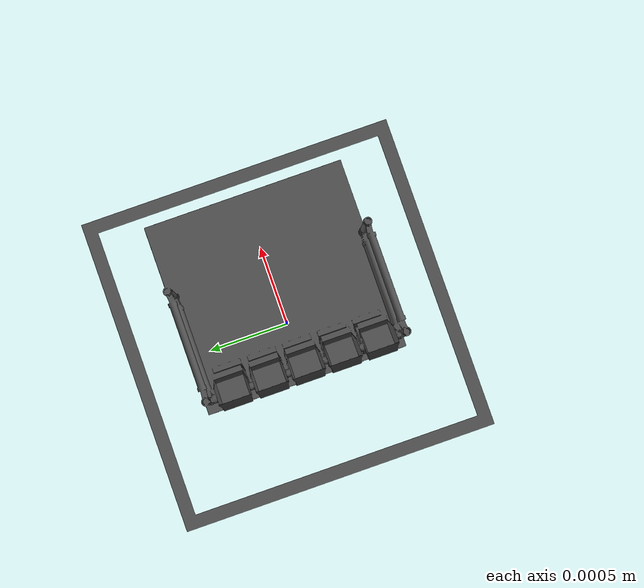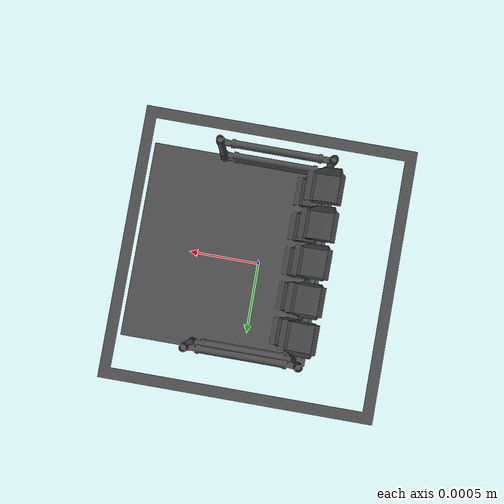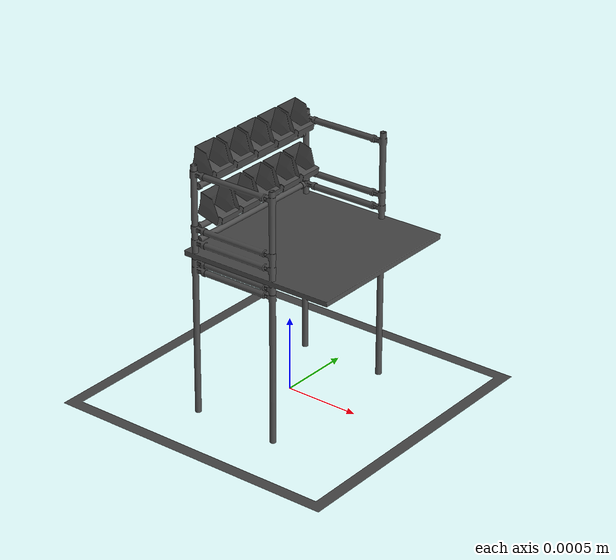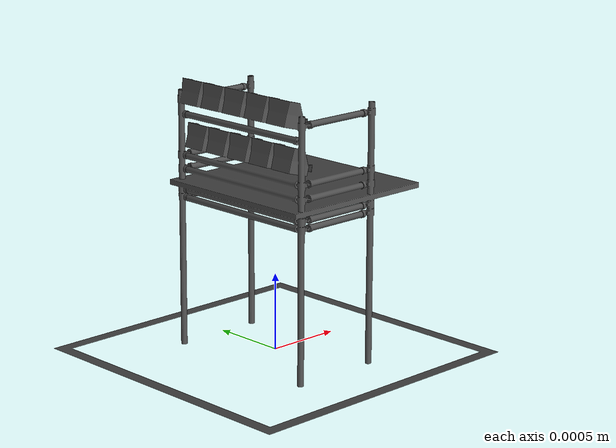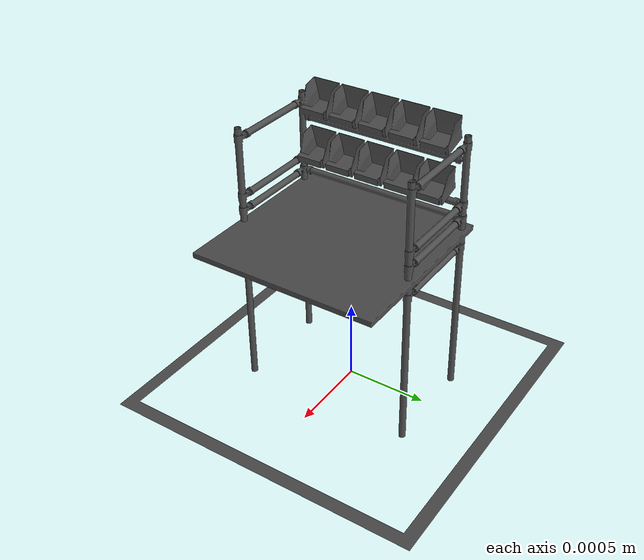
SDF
<?xml version="1.0" ?>
<sdf version="1.8">
  <model name="assembly_station">
    <static>true</static>
    <pose>0 0 0 0 0 0</pose>

    <link name="storage_station">

    <!--  visual msh -->
        <visual name="storage_visual">
          <geometry>
              <mesh>
                <uri>model://Assembly_Station/meshes/AssemblyStation.stl</uri>
                <scale>0.001 0.001 0.001</scale>
              </mesh>
          </geometry>
          <material>
              <ambient>0.2 0.2 0.2 1</ambient>
              <diffuse>0.3 0.3 0.3 1</diffuse>
              <specular>0.05 0.05 0.05 1</specular>
          </material>
        </visual>

        <!--simple collision-->
        <collision name="storage_collsion">
          <pose>0 0 0.1 0 0 0</pose>
          <geometry>
              <box>
                <size>0.5 0.2 0.2</size>
              </box>
            </geometry>
        </collision>
      </link>
  </model>
</sdf>
